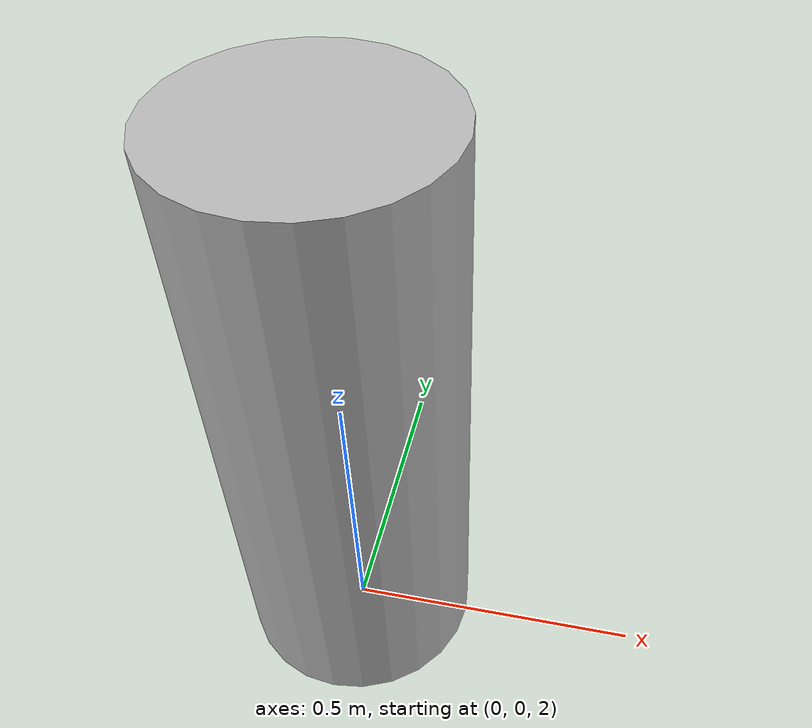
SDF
<?xml version="1.0" ?>
<sdf version="1.6">
  <model name="reflector_1">
    <static>true</static>
    <link name="link">
      <pose>0 0 2.5 0 0 0</pose>
      <collision name="collision">
        <laser_retro>200</laser_retro>
        <geometry>
          <cylinder>
            <radius>0.2</radius>
            <length>1</length>
          </cylinder>
        </geometry>
      </collision>

      <visual name="visual">
        <geometry>
          <cylinder>
            <radius>0.2</radius>
            <length>1</length>
          </cylinder>
        </geometry>
      </visual>
    </link>
  </model>
</sdf>
